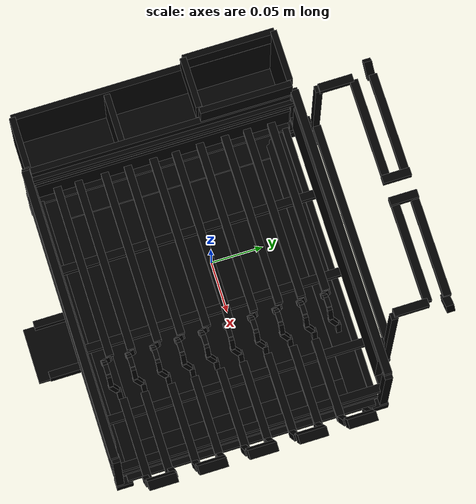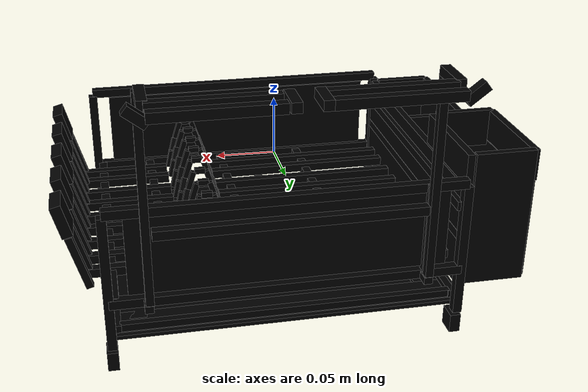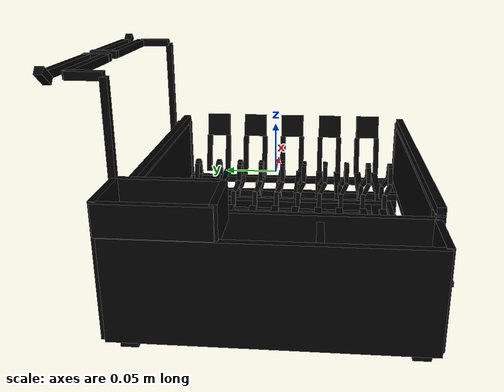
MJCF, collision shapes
<mujoco model="model">
  <option timestep="0.002" gravity="0.0 0.0 -9.81" />
  <compiler angle="radian" />
  <asset>
    <mesh file="visual/DishRack040.obj" name="DishRack040_vis" scale="0.8 0.8 0.8" />
    <texture file="visual/T_BC001.png" name="DishRack040_material" type="2d" />
    <material name="DishRack040_material" rgba="1 1 1 1.0" texture="DishRack040_material" shininess="0.4472135901451111" specular="0.3103448502657381" />
  </asset>
  <default>
    <default class="visual">
      <geom conaffinity="0" contype="0" group="2" type="mesh" density="0" />
    </default>
    <default class="collision">
      <geom group="3" rgba="1 1 1 0.25" density="0" solref="0.004 1" solimp="0.998 0.998 0.001" friction="0.5" />
    </default>
    <default class="spawn">
      <geom group="0" rgba="1 1 1 0.5" contype="0" conaffinity="0" />
      <site group="0" rgba="1 1 1 0.5" />
    </default>
    <default class="region">
      <geom group="1" conaffinity="0" contype="0" rgba="0 1 0 0" mass="0" />
    </default>
  </default>
  <worldbody>
    <body>
      <body name="object">
        <geom mesh="DishRack040_vis" type="mesh" class="visual" material="DishRack040_material" group="2" contype="0" conaffinity="0" density="0" mass="0.5" />
        <geom type="box" pos="0.01093052 -0.11919412 -0.095625568" size="0.138775861263 0.00382407195866 0.003824082762" quat="1.0 0.0 0.0 0.0" class="collision" group="3" rgba="0 0 0 0" density="0" friction="0.5" solref="0.004 1" solimp="0.998 0.998 0.001" />
        <geom type="box" pos="0.010790568 -0.009310472 -0.097610712" size="0.140227222443 0.12762362957 0.00164281092584" quat="1.0 0.0 0.0 0.0" class="collision" group="3" rgba="0 0 0 0" density="0" friction="0.5" solref="0.004 1" solimp="0.998 0.998 0.001" />
        <geom type="box" pos="0.01093052 0.103645272 -0.095625568" size="0.138775861263 0.00382407195866 0.003824082762" quat="1.0 0.0 0.0 0.0" class="collision" group="3" rgba="0 0 0 0" density="0" friction="0.5" solref="0.004 1" solimp="0.998 0.998 0.001" />
        <geom type="box" pos="-0.133622104 -0.008855744 -0.095625568" size="0.0038240775466 0.123114538193 0.00382407195866" quat="1.0 0.0 0.0 0.0" class="collision" group="3" rgba="0 0 0 0" density="0" friction="0.5" solref="0.004 1" solimp="0.998 0.998 0.001" />
        <geom type="box" pos="0.153532664 -0.008855744 -0.095625568" size="0.0038240775466 0.123114538193 0.00382407195866" quat="1.0 0.0 0.0 0.0" class="collision" group="3" rgba="0 0 0 0" density="0" friction="0.5" solref="0.004 1" solimp="0.998 0.998 0.001" />
        <geom type="box" pos="0.153404728 -0.139735184 -0.04527308" size="0.00382407456636 0.00382407456636 0.0581106483936" quat="1.0 0.0 0.0 0.0" class="collision" group="3" rgba="0 0 0 0" density="0" friction="0.5" solref="0.004 1" solimp="0.998 0.998 0.001" />
        <geom type="box" pos="-0.131488112 -0.139735184 -0.04527308" size="0.00382407456636 0.00382407456636 0.0581106543541" quat="1.0 0.0 0.0 0.0" class="collision" group="3" rgba="0 0 0 0" density="0" friction="0.5" solref="0.004 1" solimp="0.998 0.998 0.001" />
        <geom type="box" pos="0.01093052 -0.140505008 0.015257224" size="0.142520010471 0.00382407195866 0.003824082762" quat="1.0 0.0 0.0 0.0" class="collision" group="3" rgba="0 0 0 0" density="0" friction="0.5" solref="0.004 1" solimp="0.998 0.998 0.001" />
        <geom type="box" pos="0.153404728 0.122612472 -0.04527308" size="0.00382407456636 0.00382407456636 0.0581106603146" quat="1.0 0.0 0.0 0.0" class="collision" group="3" rgba="0 0 0 0" density="0" friction="0.5" solref="0.004 1" solimp="0.998 0.998 0.001" />
        <geom type="box" pos="-0.131488112 0.122612472 -0.04527308" size="0.00382407456636 0.00382407456636 0.058110666275" quat="1.0 0.0 0.0 0.0" class="collision" group="3" rgba="0 0 0 0" density="0" friction="0.5" solref="0.004 1" solimp="0.998 0.998 0.001" />
        <geom type="box" pos="0.01093052 0.122807368 0.015257224" size="0.142520010471 0.00382407195866 0.003824082762" quat="1.0 0.0 0.0 0.0" class="collision" group="3" rgba="0 0 0 0" density="0" friction="0.5" solref="0.004 1" solimp="0.998 0.998 0.001" />
        <geom type="box" pos="0.01093052 0.133778864 0.000816152" size="0.106719696522 0.00382407195866 0.00382404699922" quat="1.0 0.0 0.0 0.0" class="collision" group="3" rgba="0 0 0 0" density="0" friction="0.5" solref="0.004 1" solimp="0.998 0.998 0.001" />
        <geom type="box" pos="0.122307488 0.133680744 0.026351568" size="0.00326423831284 0.00326423831284 0.0863599896431" quat="1.0 0.0 0.0 0.0" class="collision" group="3" rgba="0 0 0 0" density="0" friction="0.5" solref="0.004 1" solimp="0.998 0.998 0.001" />
        <geom type="box" pos="-0.100098472 0.133680744 0.026351568" size="0.00326423868537 0.00326423868537 0.0863599896431" quat="1.0 0.0 0.0 0.0" class="collision" group="3" rgba="0 0 0 0" density="0" friction="0.5" solref="0.004 1" solimp="0.998 0.998 0.001" />
        <geom type="box" pos="0.122307488 0.125239088 -0.02102284" size="0.00326425395906 0.00326425395906 0.0396979540587" quat="1.0 0.0 0.0 0.0" class="collision" group="3" rgba="0 0 0 0" density="0" friction="0.5" solref="0.004 1" solimp="0.998 0.998 0.001" />
        <geom type="box" pos="-0.100098472 0.125239088 -0.02102284" size="0.00326425395906 0.00326425395906 0.0396979540587" quat="1.0 0.0 0.0 0.0" class="collision" group="3" rgba="0 0 0 0" density="0" friction="0.5" solref="0.004 1" solimp="0.998 0.998 0.001" />
        <geom type="box" pos="0.10228884 -0.008855744 -0.0627512" size="0.0038240775466 0.128261911869 0.00382405333221" quat="1.0 0.0 0.0 0.0" class="collision" group="3" rgba="0 0 0 0" density="0" friction="0.5" solref="0.004 1" solimp="0.998 0.998 0.001" />
        <geom type="box" pos="0.030340776 -0.008855744 -0.0627512" size="0.0038240775466 0.128261911869 0.00382405333221" quat="1.0 0.0 0.0 0.0" class="collision" group="3" rgba="0 0 0 0" density="0" friction="0.5" solref="0.004 1" solimp="0.998 0.998 0.001" />
        <geom type="box" pos="-0.049638032 -0.008855744 -0.0627512" size="0.0038240775466 0.128261911869 0.00382405370474" quat="1.0 0.0 0.0 0.0" class="collision" group="3" rgba="0 0 0 0" density="0" friction="0.5" solref="0.004 1" solimp="0.998 0.998 0.001" />
        <geom type="box" pos="-0.134638408 -0.008855744 -0.0627512" size="0.0038240775466 0.128261911869 0.00382405407727" quat="1.0 0.0 0.0 0.0" class="collision" group="3" rgba="0 0 0 0" density="0" friction="0.5" solref="0.004 1" solimp="0.998 0.998 0.001" />
        <geom type="box" pos="-0.132958024 -0.008855744 -0.035000696" size="0.0038240775466 0.128261911869 0.00382405407727" quat="1.0 0.0 0.0 0.0" class="collision" group="3" rgba="0 0 0 0" density="0" friction="0.5" solref="0.004 1" solimp="0.998 0.998 0.001" />
        <geom type="box" pos="-0.12887564 -0.008855744 -0.005651232" size="0.00382407791913 0.130805468559 0.00382405407727" quat="1.0 0.0 0.0 0.0" class="collision" group="3" rgba="0 0 0 0" density="0" friction="0.5" solref="0.004 1" solimp="0.998 0.998 0.001" />
        <geom type="box" pos="-0.041844192 0.099715792 -0.059487064" size="0.0861644744873 0.00382407195866 0.00382410138845" quat="1.0 0.0 0.0 0.0" class="collision" group="3" rgba="0 0 0 0" density="0" friction="0.5" solref="0.004 1" solimp="0.998 0.998 0.001" />
        <geom type="box" pos="-0.042926976 0.075619 -0.059487064" size="0.0861644744873 0.00382407195866 0.00382410101593" quat="1.0 0.0 0.0 0.0" class="collision" group="3" rgba="0 0 0 0" density="0" friction="0.5" solref="0.004 1" solimp="0.998 0.998 0.001" />
        <geom type="box" pos="-0.042926976 0.053476 -0.059487064" size="0.0861644744873 0.00382407195866 0.00382410101593" quat="1.0 0.0 0.0 0.0" class="collision" group="3" rgba="0 0 0 0" density="0" friction="0.5" solref="0.004 1" solimp="0.998 0.998 0.001" />
        <geom type="box" pos="-0.042926976 0.02838928 -0.059487064" size="0.0861644744873 0.00382407195866 0.0038241006434" quat="1.0 0.0 0.0 0.0" class="collision" group="3" rgba="0 0 0 0" density="0" friction="0.5" solref="0.004 1" solimp="0.998 0.998 0.001" />
        <geom type="box" pos="-0.042076504 0.00377148 -0.059487064" size="0.0861644744873 0.00382407195866 0.00382410027087" quat="1.0 0.0 0.0 0.0" class="collision" group="3" rgba="0 0 0 0" density="0" friction="0.5" solref="0.004 1" solimp="0.998 0.998 0.001" />
        <geom type="box" pos="-0.042076504 -0.018501776 -0.059487064" size="0.0861644744873 0.00382407195866 0.00382409989834" quat="1.0 0.0 0.0 0.0" class="collision" group="3" rgba="0 0 0 0" density="0" friction="0.5" solref="0.004 1" solimp="0.998 0.998 0.001" />
        <geom type="box" pos="-0.042076504 -0.0440574 -0.059487064" size="0.0861644744873 0.00382407195866 0.00382409952581" quat="1.0 0.0 0.0 0.0" class="collision" group="3" rgba="0 0 0 0" density="0" friction="0.5" solref="0.004 1" solimp="0.998 0.998 0.001" />
        <geom type="box" pos="-0.042076504 -0.067034016 -0.059487064" size="0.0861644744873 0.00382407195866 0.00382409915328" quat="1.0 0.0 0.0 0.0" class="collision" group="3" rgba="0 0 0 0" density="0" friction="0.5" solref="0.004 1" solimp="0.998 0.998 0.001" />
        <geom type="box" pos="-0.042076504 -0.093293008 -0.059487064" size="0.0861644744873 0.00382407195866 0.00382409878076" quat="1.0 0.0 0.0 0.0" class="collision" group="3" rgba="0 0 0 0" density="0" friction="0.5" solref="0.004 1" solimp="0.998 0.998 0.001" />
        <geom type="box" pos="-0.042076504 -0.114393984 -0.059487064" size="0.0861644744873 0.00382407195866 0.00382409878076" quat="1.0 0.0 0.0 0.0" class="collision" group="3" rgba="0 0 0 0" density="0" friction="0.5" solref="0.004 1" solimp="0.998 0.998 0.001" />
        <geom type="box" pos="0.17281864 0.099715792 -0.035891848" size="0.00301710180939 0.00301710180939 0.0235687702894" quat="0.1405487060546875 -0.0 -0.9900737404823303 -0.0" class="collision" group="3" rgba="0 0 0 0" density="0" friction="0.5" solref="0.004 1" solimp="0.998 0.998 0.001" />
        <geom type="box" pos="0.127054696 0.075619 -0.059487064" size="0.0402219057084 0.00382407195866 0.00382405631244" quat="1.0 0.0 0.0 0.0" class="collision" group="3" rgba="0 0 0 0" density="0" friction="0.5" solref="0.004 1" solimp="0.998 0.998 0.001" />
        <geom type="box" pos="0.127054696 0.053476 -0.059487064" size="0.0402219057084 0.00382407195866 0.00382405668497" quat="1.0 0.0 0.0 0.0" class="collision" group="3" rgba="0 0 0 0" density="0" friction="0.5" solref="0.004 1" solimp="0.998 0.998 0.001" />
        <geom type="box" pos="0.127054696 0.02838928 -0.059487064" size="0.0402219057084 0.00382407195866 0.0038240570575" quat="1.0 0.0 0.0 0.0" class="collision" group="3" rgba="0 0 0 0" density="0" friction="0.5" solref="0.004 1" solimp="0.998 0.998 0.001" />
        <geom type="box" pos="0.127451696 0.00377148 -0.059487064" size="0.0402219057084 0.00382407195866 0.00382405743003" quat="1.0 0.0 0.0 0.0" class="collision" group="3" rgba="0 0 0 0" density="0" friction="0.5" solref="0.004 1" solimp="0.998 0.998 0.001" />
        <geom type="box" pos="0.127451696 -0.018501776 -0.059487064" size="0.0402219057084 0.00382407195866 0.00382405780256" quat="1.0 0.0 0.0 0.0" class="collision" group="3" rgba="0 0 0 0" density="0" friction="0.5" solref="0.004 1" solimp="0.998 0.998 0.001" />
        <geom type="box" pos="0.127451696 -0.0440574 -0.059487064" size="0.0402219057084 0.00382407195866 0.00382405780256" quat="1.0 0.0 0.0 0.0" class="collision" group="3" rgba="0 0 0 0" density="0" friction="0.5" solref="0.004 1" solimp="0.998 0.998 0.001" />
        <geom type="box" pos="0.127451696 -0.067034016 -0.059487064" size="0.0402219057084 0.00382407195866 0.00382405817508" quat="1.0 0.0 0.0 0.0" class="collision" group="3" rgba="0 0 0 0" density="0" friction="0.5" solref="0.004 1" solimp="0.998 0.998 0.001" />
        <geom type="box" pos="0.127451696 -0.093293008 -0.059487064" size="0.0402219057084 0.00382407195866 0.00382405854762" quat="1.0 0.0 0.0 0.0" class="collision" group="3" rgba="0 0 0 0" density="0" friction="0.5" solref="0.004 1" solimp="0.998 0.998 0.001" />
        <geom type="box" pos="0.127451696 -0.114393984 -0.059487064" size="0.0402219057084 0.00382407195866 0.00382405892014" quat="1.0 0.0 0.0 0.0" class="collision" group="3" rgba="0 0 0 0" density="0" friction="0.5" solref="0.004 1" solimp="0.998 0.998 0.001" />
        <geom type="box" pos="0.083045248 -0.04473248 -0.049743752" size="0.0023286100477 0.00232860986143 0.00845653042197" quat="0.10435331612825394 0.0 0.994540274143219 0.0" class="collision" group="3" rgba="0 0 0 0" density="0" friction="0.5" solref="0.004 1" solimp="0.998 0.998 0.001" />
        <geom type="box" pos="0.074049576 -0.05064552 -0.022109368" size="0.00232860986143 0.00232860986143 0.00845652967692" quat="0.15572857856750488 0.0 0.987799882888794 0.0" class="collision" group="3" rgba="0 0 0 0" density="0" friction="0.5" solref="0.004 1" solimp="0.998 0.998 0.001" />
        <geom type="box" pos="0.079105704 -0.048632072 -0.036256376" size="0.00232860986143 0.00232860986143 0.0063017308712" quat="0.15189847350120544 -0.03432556986808777 0.963505208492279 0.21773000061511993" class="collision" group="3" rgba="0 0 0 0" density="0" friction="0.5" solref="0.004 1" solimp="0.998 0.998 0.001" />
        <geom type="box" pos="0.048636048 -0.04473248 -0.049743752" size="0.00232860986143 0.00232860986143 0.00845652967692" quat="0.10435343533754349 -0.0 -0.994540274143219 -0.0" class="collision" group="3" rgba="0 0 0 0" density="0" friction="0.5" solref="0.004 1" solimp="0.998 0.998 0.001" />
        <geom type="box" pos="0.057631712 -0.05064552 -0.022109368" size="0.00232860986143 0.00232860986143 0.00845653042197" quat="0.15572869777679443 -0.0 -0.987799882888794 -0.0" class="collision" group="3" rgba="0 0 0 0" density="0" friction="0.5" solref="0.004 1" solimp="0.998 0.998 0.001" />
        <geom type="box" pos="0.052575584 -0.048632072 -0.036256376" size="0.00232860986143 0.0023286100477 0.0063017308712" quat="0.151898592710495 -0.034325581043958664 -0.963505208492279 -0.21772995591163635" class="collision" group="3" rgba="0 0 0 0" density="0" friction="0.5" solref="0.004 1" solimp="0.998 0.998 0.001" />
        <geom type="box" pos="0.06576656 -0.05064552 -0.01359212" size="0.00463591590524 0.00232860986143 0.00232861060649" quat="1.0 0.0 0.0 0.0" class="collision" group="3" rgba="0 0 0 0" density="0" friction="0.5" solref="0.004 1" solimp="0.998 0.998 0.001" />
        <geom type="box" pos="0.083045248 -0.068557944 -0.049743752" size="0.0023286100477 0.00232860986143 0.00845653042197" quat="0.10435331612825394 0.0 0.994540274143219 0.0" class="collision" group="3" rgba="0 0 0 0" density="0" friction="0.5" solref="0.004 1" solimp="0.998 0.998 0.001" />
        <geom type="box" pos="0.074049576 -0.074470984 -0.022109368" size="0.00232860986143 0.00232860986143 0.00845652967692" quat="0.15572857856750488 0.0 0.987799882888794 0.0" class="collision" group="3" rgba="0 0 0 0" density="0" friction="0.5" solref="0.004 1" solimp="0.998 0.998 0.001" />
        <geom type="box" pos="0.079105704 -0.072457536 -0.036256376" size="0.00232860986143 0.00232860986143 0.0063017308712" quat="0.15189847350120544 -0.03432556986808777 0.963505208492279 0.21773000061511993" class="collision" group="3" rgba="0 0 0 0" density="0" friction="0.5" solref="0.004 1" solimp="0.998 0.998 0.001" />
        <geom type="box" pos="0.048636048 -0.068557944 -0.049743752" size="0.00232860986143 0.00232860986143 0.00845652967692" quat="0.10435343533754349 -0.0 -0.994540274143219 -0.0" class="collision" group="3" rgba="0 0 0 0" density="0" friction="0.5" solref="0.004 1" solimp="0.998 0.998 0.001" />
        <geom type="box" pos="0.057631712 -0.074470984 -0.022109368" size="0.00232860986143 0.00232860986143 0.00845653042197" quat="0.15572869777679443 -0.0 -0.987799882888794 -0.0" class="collision" group="3" rgba="0 0 0 0" density="0" friction="0.5" solref="0.004 1" solimp="0.998 0.998 0.001" />
        <geom type="box" pos="0.052575584 -0.072457536 -0.036256376" size="0.00232860986143 0.0023286100477 0.0063017308712" quat="0.151898592710495 -0.034325581043958664 -0.963505208492279 -0.21772995591163635" class="collision" group="3" rgba="0 0 0 0" density="0" friction="0.5" solref="0.004 1" solimp="0.998 0.998 0.001" />
        <geom type="box" pos="0.06576656 -0.074470984 -0.01359212" size="0.00463591590524 0.00232860986143 0.00232861060649" quat="1.0 0.0 0.0 0.0" class="collision" group="3" rgba="0 0 0 0" density="0" friction="0.5" solref="0.004 1" solimp="0.998 0.998 0.001" />
        <geom type="box" pos="0.083045248 -0.092673608 -0.049743752" size="0.0023286100477 0.00232860986143 0.00845653042197" quat="0.10435331612825394 0.0 0.994540274143219 0.0" class="collision" group="3" rgba="0 0 0 0" density="0" friction="0.5" solref="0.004 1" solimp="0.998 0.998 0.001" />
        <geom type="box" pos="0.074049576 -0.098586648 -0.022109368" size="0.00232860986143 0.00232860986143 0.00845652967692" quat="0.15572857856750488 0.0 0.987799882888794 0.0" class="collision" group="3" rgba="0 0 0 0" density="0" friction="0.5" solref="0.004 1" solimp="0.998 0.998 0.001" />
        <geom type="box" pos="0.079105704 -0.0965732 -0.036256376" size="0.00232860986143 0.00232860986143 0.0063017308712" quat="0.15189847350120544 -0.03432556986808777 0.963505208492279 0.21773000061511993" class="collision" group="3" rgba="0 0 0 0" density="0" friction="0.5" solref="0.004 1" solimp="0.998 0.998 0.001" />
        <geom type="box" pos="0.048636048 -0.092673608 -0.049743752" size="0.00232860986143 0.00232860986143 0.00845652967692" quat="0.10435343533754349 -0.0 -0.994540274143219 -0.0" class="collision" group="3" rgba="0 0 0 0" density="0" friction="0.5" solref="0.004 1" solimp="0.998 0.998 0.001" />
        <geom type="box" pos="0.057631712 -0.098586648 -0.022109368" size="0.00232860986143 0.00232860986143 0.00845653042197" quat="0.15572869777679443 -0.0 -0.987799882888794 -0.0" class="collision" group="3" rgba="0 0 0 0" density="0" friction="0.5" solref="0.004 1" solimp="0.998 0.998 0.001" />
        <geom type="box" pos="0.052575584 -0.0965732 -0.036256376" size="0.00232860986143 0.0023286100477 0.0063017308712" quat="0.151898592710495 -0.034325581043958664 -0.963505208492279 -0.21772995591163635" class="collision" group="3" rgba="0 0 0 0" density="0" friction="0.5" solref="0.004 1" solimp="0.998 0.998 0.001" />
        <geom type="box" pos="0.06576656 -0.098586648 -0.01359212" size="0.00463591590524 0.00232860986143 0.00232861060649" quat="1.0 0.0 0.0 0.0" class="collision" group="3" rgba="0 0 0 0" density="0" friction="0.5" solref="0.004 1" solimp="0.998 0.998 0.001" />
        <geom type="box" pos="0.083045248 -0.116392248 -0.049743752" size="0.0023286100477 0.00232860986143 0.00845653042197" quat="0.10435331612825394 0.0 0.994540274143219 0.0" class="collision" group="3" rgba="0 0 0 0" density="0" friction="0.5" solref="0.004 1" solimp="0.998 0.998 0.001" />
        <geom type="box" pos="0.074049576 -0.122305296 -0.022109368" size="0.00232860986143 0.00232860986143 0.00845652967692" quat="0.15572857856750488 0.0 0.987799882888794 0.0" class="collision" group="3" rgba="0 0 0 0" density="0" friction="0.5" solref="0.004 1" solimp="0.998 0.998 0.001" />
        <geom type="box" pos="0.079105704 -0.120291848 -0.036256376" size="0.00232860986143 0.00232860986143 0.0063017308712" quat="0.15189847350120544 -0.03432556986808777 0.963505208492279 0.21773000061511993" class="collision" group="3" rgba="0 0 0 0" density="0" friction="0.5" solref="0.004 1" solimp="0.998 0.998 0.001" />
        <geom type="box" pos="0.048636048 -0.116392248 -0.049743752" size="0.00232860986143 0.00232860986143 0.00845652967692" quat="0.10435343533754349 -0.0 -0.994540274143219 -0.0" class="collision" group="3" rgba="0 0 0 0" density="0" friction="0.5" solref="0.004 1" solimp="0.998 0.998 0.001" />
        <geom type="box" pos="0.057631712 -0.122305296 -0.022109368" size="0.00232860986143 0.00232860986143 0.00845653042197" quat="0.15572869777679443 -0.0 -0.987799882888794 -0.0" class="collision" group="3" rgba="0 0 0 0" density="0" friction="0.5" solref="0.004 1" solimp="0.998 0.998 0.001" />
        <geom type="box" pos="0.052575584 -0.120291848 -0.036256376" size="0.00232860986143 0.0023286100477 0.0063017308712" quat="0.151898592710495 -0.034325581043958664 -0.963505208492279 -0.21772995591163635" class="collision" group="3" rgba="0 0 0 0" density="0" friction="0.5" solref="0.004 1" solimp="0.998 0.998 0.001" />
        <geom type="box" pos="0.06576656 -0.122305296 -0.01359212" size="0.00463591590524 0.00232860986143 0.00232861060649" quat="1.0 0.0 0.0 0.0" class="collision" group="3" rgba="0 0 0 0" density="0" friction="0.5" solref="0.004 1" solimp="0.998 0.998 0.001" />
        <geom type="box" pos="0.083045248 -0.02112352 -0.049743752" size="0.0023286100477 0.00232860986143 0.00845653042197" quat="0.10435331612825394 0.0 0.994540274143219 0.0" class="collision" group="3" rgba="0 0 0 0" density="0" friction="0.5" solref="0.004 1" solimp="0.998 0.998 0.001" />
        <geom type="box" pos="0.074049576 -0.027036568 -0.022109368" size="0.00232860986143 0.00232860986143 0.00845652967692" quat="0.15572857856750488 0.0 0.987799882888794 0.0" class="collision" group="3" rgba="0 0 0 0" density="0" friction="0.5" solref="0.004 1" solimp="0.998 0.998 0.001" />
        <geom type="box" pos="0.079105704 -0.02502312 -0.036256376" size="0.00232860986143 0.00232860986143 0.0063017308712" quat="0.15189847350120544 -0.03432556986808777 0.963505208492279 0.21773000061511993" class="collision" group="3" rgba="0 0 0 0" density="0" friction="0.5" solref="0.004 1" solimp="0.998 0.998 0.001" />
        <geom type="box" pos="0.048636048 -0.02112352 -0.049743752" size="0.00232860986143 0.00232860986143 0.00845652967692" quat="0.10435343533754349 -0.0 -0.994540274143219 -0.0" class="collision" group="3" rgba="0 0 0 0" density="0" friction="0.5" solref="0.004 1" solimp="0.998 0.998 0.001" />
        <geom type="box" pos="0.057631712 -0.027036568 -0.022109368" size="0.00232860986143 0.00232860986143 0.00845653042197" quat="0.15572869777679443 -0.0 -0.987799882888794 -0.0" class="collision" group="3" rgba="0 0 0 0" density="0" friction="0.5" solref="0.004 1" solimp="0.998 0.998 0.001" />
        <geom type="box" pos="0.052575584 -0.02502312 -0.036256376" size="0.00232860986143 0.0023286100477 0.0063017308712" quat="0.151898592710495 -0.034325581043958664 -0.963505208492279 -0.21772995591163635" class="collision" group="3" rgba="0 0 0 0" density="0" friction="0.5" solref="0.004 1" solimp="0.998 0.998 0.001" />
        <geom type="box" pos="0.06576656 -0.027036568 -0.01359212" size="0.00463591590524 0.00232860986143 0.00232861060649" quat="1.0 0.0 0.0 0.0" class="collision" group="3" rgba="0 0 0 0" density="0" friction="0.5" solref="0.004 1" solimp="0.998 0.998 0.001" />
        <geom type="box" pos="0.083045248 0.002936664 -0.049743752" size="0.0023286100477 0.00232860986143 0.00845653042197" quat="0.10435331612825394 0.0 0.994540274143219 0.0" class="collision" group="3" rgba="0 0 0 0" density="0" friction="0.5" solref="0.004 1" solimp="0.998 0.998 0.001" />
        <geom type="box" pos="0.074049576 -0.002976376 -0.022109368" size="0.00232860986143 0.00232860986143 0.00845652967692" quat="0.15572857856750488 0.0 0.987799882888794 0.0" class="collision" group="3" rgba="0 0 0 0" density="0" friction="0.5" solref="0.004 1" solimp="0.998 0.998 0.001" />
        <geom type="box" pos="0.079105704 -0.000962936 -0.036256376" size="0.00232860986143 0.00232860986143 0.0063017308712" quat="0.15189847350120544 -0.03432556986808777 0.963505208492279 0.21773000061511993" class="collision" group="3" rgba="0 0 0 0" density="0" friction="0.5" solref="0.004 1" solimp="0.998 0.998 0.001" />
        <geom type="box" pos="0.048636048 0.002936664 -0.049743752" size="0.00232860986143 0.00232860986143 0.00845652967692" quat="0.10435343533754349 -0.0 -0.994540274143219 -0.0" class="collision" group="3" rgba="0 0 0 0" density="0" friction="0.5" solref="0.004 1" solimp="0.998 0.998 0.001" />
        <geom type="box" pos="0.057631712 -0.002976376 -0.022109368" size="0.00232860986143 0.00232860986143 0.00845653042197" quat="0.15572869777679443 -0.0 -0.987799882888794 -0.0" class="collision" group="3" rgba="0 0 0 0" density="0" friction="0.5" solref="0.004 1" solimp="0.998 0.998 0.001" />
        <geom type="box" pos="0.052575584 -0.000962936 -0.036256376" size="0.00232860986143 0.0023286100477 0.0063017308712" quat="0.151898592710495 -0.034325581043958664 -0.963505208492279 -0.21772995591163635" class="collision" group="3" rgba="0 0 0 0" density="0" friction="0.5" solref="0.004 1" solimp="0.998 0.998 0.001" />
        <geom type="box" pos="0.06576656 -0.002976376 -0.01359212" size="0.00463591590524 0.00232860986143 0.00232861060649" quat="1.0 0.0 0.0 0.0" class="collision" group="3" rgba="0 0 0 0" density="0" friction="0.5" solref="0.004 1" solimp="0.998 0.998 0.001" />
        <geom type="box" pos="0.083045248 0.027181184 -0.049743752" size="0.0023286100477 0.00232860986143 0.00845653042197" quat="0.10435331612825394 0.0 0.994540274143219 0.0" class="collision" group="3" rgba="0 0 0 0" density="0" friction="0.5" solref="0.004 1" solimp="0.998 0.998 0.001" />
        <geom type="box" pos="0.074049576 0.021268136 -0.022109368" size="0.00232860986143 0.00232860986143 0.00845652967692" quat="0.15572857856750488 0.0 0.987799882888794 0.0" class="collision" group="3" rgba="0 0 0 0" density="0" friction="0.5" solref="0.004 1" solimp="0.998 0.998 0.001" />
        <geom type="box" pos="0.079105704 0.023281584 -0.036256376" size="0.00232860986143 0.00232860986143 0.0063017308712" quat="0.15189847350120544 -0.03432556986808777 0.963505208492279 0.21773000061511993" class="collision" group="3" rgba="0 0 0 0" density="0" friction="0.5" solref="0.004 1" solimp="0.998 0.998 0.001" />
        <geom type="box" pos="0.048636048 0.027181184 -0.049743752" size="0.00232860986143 0.00232860986143 0.00845652967692" quat="0.10435343533754349 -0.0 -0.994540274143219 -0.0" class="collision" group="3" rgba="0 0 0 0" density="0" friction="0.5" solref="0.004 1" solimp="0.998 0.998 0.001" />
        <geom type="box" pos="0.057631712 0.021268136 -0.022109368" size="0.00232860986143 0.00232860986143 0.00845653042197" quat="0.15572869777679443 -0.0 -0.987799882888794 -0.0" class="collision" group="3" rgba="0 0 0 0" density="0" friction="0.5" solref="0.004 1" solimp="0.998 0.998 0.001" />
        <geom type="box" pos="0.052575584 0.023281584 -0.036256376" size="0.00232860986143 0.0023286100477 0.0063017308712" quat="0.151898592710495 -0.034325581043958664 -0.963505208492279 -0.21772995591163635" class="collision" group="3" rgba="0 0 0 0" density="0" friction="0.5" solref="0.004 1" solimp="0.998 0.998 0.001" />
        <geom type="box" pos="0.06576656 0.021268136 -0.01359212" size="0.00463591590524 0.00232860986143 0.00232861060649" quat="1.0 0.0 0.0 0.0" class="collision" group="3" rgba="0 0 0 0" density="0" friction="0.5" solref="0.004 1" solimp="0.998 0.998 0.001" />
        <geom type="box" pos="0.083045248 0.0513962 -0.049743752" size="0.0023286100477 0.00232860986143 0.00845653042197" quat="0.10435331612825394 0.0 0.994540274143219 0.0" class="collision" group="3" rgba="0 0 0 0" density="0" friction="0.5" solref="0.004 1" solimp="0.998 0.998 0.001" />
        <geom type="box" pos="0.074049576 0.04548316 -0.022109368" size="0.00232860986143 0.00232860986143 0.00845652967692" quat="0.15572857856750488 0.0 0.987799882888794 0.0" class="collision" group="3" rgba="0 0 0 0" density="0" friction="0.5" solref="0.004 1" solimp="0.998 0.998 0.001" />
        <geom type="box" pos="0.079105704 0.0474966 -0.036256376" size="0.00232860986143 0.00232860986143 0.0063017308712" quat="0.15189847350120544 -0.03432556986808777 0.963505208492279 0.21773000061511993" class="collision" group="3" rgba="0 0 0 0" density="0" friction="0.5" solref="0.004 1" solimp="0.998 0.998 0.001" />
        <geom type="box" pos="0.048636048 0.0513962 -0.049743752" size="0.00232860986143 0.00232860986143 0.00845652967692" quat="0.10435343533754349 -0.0 -0.994540274143219 -0.0" class="collision" group="3" rgba="0 0 0 0" density="0" friction="0.5" solref="0.004 1" solimp="0.998 0.998 0.001" />
        <geom type="box" pos="0.057631712 0.04548316 -0.022109368" size="0.00232860986143 0.00232860986143 0.00845653042197" quat="0.15572869777679443 -0.0 -0.987799882888794 -0.0" class="collision" group="3" rgba="0 0 0 0" density="0" friction="0.5" solref="0.004 1" solimp="0.998 0.998 0.001" />
        <geom type="box" pos="0.052575584 0.0474966 -0.036256376" size="0.00232860986143 0.0023286100477 0.0063017308712" quat="0.151898592710495 -0.034325581043958664 -0.963505208492279 -0.21772995591163635" class="collision" group="3" rgba="0 0 0 0" density="0" friction="0.5" solref="0.004 1" solimp="0.998 0.998 0.001" />
        <geom type="box" pos="0.06576656 0.04548316 -0.01359212" size="0.00463591590524 0.00232860986143 0.00232861060649" quat="1.0 0.0 0.0 0.0" class="collision" group="3" rgba="0 0 0 0" density="0" friction="0.5" solref="0.004 1" solimp="0.998 0.998 0.001" />
        <geom type="box" pos="0.083045248 0.075423416 -0.049743752" size="0.0023286100477 0.00232860986143 0.00845653042197" quat="0.10435331612825394 0.0 0.994540274143219 0.0" class="collision" group="3" rgba="0 0 0 0" density="0" friction="0.5" solref="0.004 1" solimp="0.998 0.998 0.001" />
        <geom type="box" pos="0.074049576 0.069510368 -0.022109368" size="0.00232860986143 0.00232860986143 0.00845652967692" quat="0.15572857856750488 0.0 0.987799882888794 0.0" class="collision" group="3" rgba="0 0 0 0" density="0" friction="0.5" solref="0.004 1" solimp="0.998 0.998 0.001" />
        <geom type="box" pos="0.079105704 0.071523816 -0.036256376" size="0.00232860986143 0.00232860986143 0.0063017308712" quat="0.15189847350120544 -0.03432556986808777 0.963505208492279 0.21773000061511993" class="collision" group="3" rgba="0 0 0 0" density="0" friction="0.5" solref="0.004 1" solimp="0.998 0.998 0.001" />
        <geom type="box" pos="0.048636048 0.075423416 -0.049743752" size="0.00232860986143 0.00232860986143 0.00845652967692" quat="0.10435343533754349 -0.0 -0.994540274143219 -0.0" class="collision" group="3" rgba="0 0 0 0" density="0" friction="0.5" solref="0.004 1" solimp="0.998 0.998 0.001" />
        <geom type="box" pos="0.057631712 0.069510368 -0.022109368" size="0.00232860986143 0.00232860986143 0.00845653042197" quat="0.15572869777679443 -0.0 -0.987799882888794 -0.0" class="collision" group="3" rgba="0 0 0 0" density="0" friction="0.5" solref="0.004 1" solimp="0.998 0.998 0.001" />
        <geom type="box" pos="0.052575584 0.071523816 -0.036256376" size="0.00232860986143 0.0023286100477 0.0063017308712" quat="0.151898592710495 -0.034325581043958664 -0.963505208492279 -0.21772995591163635" class="collision" group="3" rgba="0 0 0 0" density="0" friction="0.5" solref="0.004 1" solimp="0.998 0.998 0.001" />
        <geom type="box" pos="0.06576656 0.069510368 -0.01359212" size="0.00463591590524 0.00232860986143 0.00232861060649" quat="1.0 0.0 0.0 0.0" class="collision" group="3" rgba="0 0 0 0" density="0" friction="0.5" solref="0.004 1" solimp="0.998 0.998 0.001" />
        <geom type="box" pos="0.083045248 0.099115528 -0.049743752" size="0.0023286100477 0.00232860986143 0.00845653042197" quat="0.10435331612825394 0.0 0.994540274143219 0.0" class="collision" group="3" rgba="0 0 0 0" density="0" friction="0.5" solref="0.004 1" solimp="0.998 0.998 0.001" />
        <geom type="box" pos="0.074049576 0.09320248 -0.022109368" size="0.00232860986143 0.00232860986143 0.00845652967692" quat="0.15572857856750488 0.0 0.987799882888794 0.0" class="collision" group="3" rgba="0 0 0 0" density="0" friction="0.5" solref="0.004 1" solimp="0.998 0.998 0.001" />
        <geom type="box" pos="0.079105704 0.095215928 -0.036256376" size="0.00232860986143 0.00232860986143 0.0063017308712" quat="0.15189847350120544 -0.03432556986808777 0.963505208492279 0.21773000061511993" class="collision" group="3" rgba="0 0 0 0" density="0" friction="0.5" solref="0.004 1" solimp="0.998 0.998 0.001" />
        <geom type="box" pos="0.048636048 0.099115528 -0.049743752" size="0.00232860986143 0.00232860986143 0.00845652967692" quat="0.10435343533754349 -0.0 -0.994540274143219 -0.0" class="collision" group="3" rgba="0 0 0 0" density="0" friction="0.5" solref="0.004 1" solimp="0.998 0.998 0.001" />
        <geom type="box" pos="0.057631712 0.09320248 -0.022109368" size="0.00232860986143 0.00232860986143 0.00845653042197" quat="0.15572869777679443 -0.0 -0.987799882888794 -0.0" class="collision" group="3" rgba="0 0 0 0" density="0" friction="0.5" solref="0.004 1" solimp="0.998 0.998 0.001" />
        <geom type="box" pos="0.052575584 0.095215928 -0.036256376" size="0.00232860986143 0.0023286100477 0.0063017308712" quat="0.151898592710495 -0.034325581043958664 -0.963505208492279 -0.21772995591163635" class="collision" group="3" rgba="0 0 0 0" density="0" friction="0.5" solref="0.004 1" solimp="0.998 0.998 0.001" />
        <geom type="box" pos="0.06576656 0.09320248 -0.01359212" size="0.00463591590524 0.00232860986143 0.00232861060649" quat="1.0 0.0 0.0 0.0" class="collision" group="3" rgba="0 0 0 0" density="0" friction="0.5" solref="0.004 1" solimp="0.998 0.998 0.001" />
        <geom type="box" pos="0.17281864 0.075313432 -0.035891848" size="0.00301710180939 0.00301710180939 0.0235687702894" quat="0.1405487060546875 -0.0 -0.9900737404823303 -0.0" class="collision" group="3" rgba="0 0 0 0" density="0" friction="0.5" solref="0.004 1" solimp="0.998 0.998 0.001" />
        <geom type="box" pos="0.17281864 0.051879032 -0.035891848" size="0.00301710180939 0.00301710180939 0.0235687702894" quat="0.1405487060546875 -0.0 -0.9900737404823303 -0.0" class="collision" group="3" rgba="0 0 0 0" density="0" friction="0.5" solref="0.004 1" solimp="0.998 0.998 0.001" />
        <geom type="box" pos="0.17281864 0.027165328 -0.035891848" size="0.00301710180939 0.00301710180939 0.0235687702894" quat="0.1405487060546875 -0.0 -0.9900737404823303 -0.0" class="collision" group="3" rgba="0 0 0 0" density="0" friction="0.5" solref="0.004 1" solimp="0.998 0.998 0.001" />
        <geom type="box" pos="0.17281864 0.003624272 -0.035891848" size="0.00301710180939 0.00301710180939 0.0235687702894" quat="0.1405487060546875 -0.0 -0.9900737404823303 -0.0" class="collision" group="3" rgba="0 0 0 0" density="0" friction="0.5" solref="0.004 1" solimp="0.998 0.998 0.001" />
        <geom type="box" pos="0.17281864 -0.020257256 -0.035891848" size="0.00301710180939 0.00301710180939 0.0235687702894" quat="0.1405487060546875 -0.0 -0.9900737404823303 -0.0" class="collision" group="3" rgba="0 0 0 0" density="0" friction="0.5" solref="0.004 1" solimp="0.998 0.998 0.001" />
        <geom type="box" pos="0.17281864 -0.044296344 -0.035891848" size="0.00301710180939 0.00301710180939 0.0235687702894" quat="0.1405487060546875 -0.0 -0.9900737404823303 -0.0" class="collision" group="3" rgba="0 0 0 0" density="0" friction="0.5" solref="0.004 1" solimp="0.998 0.998 0.001" />
        <geom type="box" pos="0.17281864 -0.068230432 -0.035891848" size="0.00301710180939 0.00301710180939 0.0235687702894" quat="0.1405487060546875 -0.0 -0.9900737404823303 -0.0" class="collision" group="3" rgba="0 0 0 0" density="0" friction="0.5" solref="0.004 1" solimp="0.998 0.998 0.001" />
        <geom type="box" pos="0.17281864 -0.091743568 -0.035891848" size="0.00301710180939 0.00301710180939 0.0235687702894" quat="0.1405487060546875 -0.0 -0.9900737404823303 -0.0" class="collision" group="3" rgba="0 0 0 0" density="0" friction="0.5" solref="0.004 1" solimp="0.998 0.998 0.001" />
        <geom type="box" pos="0.17281864 -0.116416912 -0.035891848" size="0.00301710180939 0.00301710180939 0.0235687702894" quat="0.1405487060546875 -0.0 -0.9900737404823303 -0.0" class="collision" group="3" rgba="0 0 0 0" density="0" friction="0.5" solref="0.004 1" solimp="0.998 0.998 0.001" />
        <geom type="box" pos="0.149204928 -0.008855744 -0.061647352" size="0.00382407791913 0.131997573376 0.00382407195866" quat="1.0 0.0 0.0 0.0" class="collision" group="3" rgba="0 0 0 0" density="0" friction="0.5" solref="0.004 1" solimp="0.998 0.998 0.001" />
        <geom type="box" pos="-0.050614 0.166407224 0.112974768" size="0.0465985149145 0.00382407195866 0.00382407531142" quat="1.0 0.0 0.0 0.0" class="collision" group="3" rgba="0 0 0 0" density="0" friction="0.5" solref="0.004 1" solimp="0.998 0.998 0.001" />
        <geom type="box" pos="0.072865808 0.166407224 0.112974768" size="0.0465985149145 0.00382407195866 0.00382407531142" quat="1.0 0.0 0.0 0.0" class="collision" group="3" rgba="0 0 0 0" density="0" friction="0.5" solref="0.004 1" solimp="0.998 0.998 0.001" />
        <geom type="box" pos="-0.099458864 0.150190728 0.113308416" size="0.00382407270372 0.0163512319326 0.00382407195866" quat="1.0 0.0 0.0 0.0" class="collision" group="3" rgba="0 0 0 0" density="0" friction="0.5" solref="0.004 1" solimp="0.998 0.998 0.001" />
        <geom type="box" pos="0.120147624 0.150190728 0.113308416" size="0.00382407270372 0.0163512319326 0.00382407195866" quat="1.0 0.0 0.0 0.0" class="collision" group="3" rgba="0 0 0 0" density="0" friction="0.5" solref="0.004 1" solimp="0.998 0.998 0.001" />
        <geom type="box" pos="-0.050614 0.184772888 0.112974768" size="0.0465985149145 0.00382407195866 0.00382407531142" quat="1.0 0.0 0.0 0.0" class="collision" group="3" rgba="0 0 0 0" density="0" friction="0.5" solref="0.004 1" solimp="0.998 0.998 0.001" />
        <geom type="box" pos="0.072865808 0.184772888 0.112974768" size="0.0465985149145 0.00382407195866 0.00382407531142" quat="1.0 0.0 0.0 0.0" class="collision" group="3" rgba="0 0 0 0" density="0" friction="0.5" solref="0.004 1" solimp="0.998 0.998 0.001" />
        <geom type="box" pos="-0.103542632 0.183302192 0.113308416" size="0.00382407195866 0.00382407195866 0.00920113697644" quat="0.3102211058139801 0.6354233026504517 0.6354234218597412 0.3102211058139801" class="collision" group="3" rgba="0 0 0 0" density="0" friction="0.5" solref="0.004 1" solimp="0.998 0.998 0.001" />
        <geom type="box" pos="0.125256376 0.183302192 0.113308416" size="0.00382407195866 0.00382407195866 0.00920113697644" quat="0.31022119522094727 -0.6354233026504517 -0.6354234218597412 0.31022101640701294" class="collision" group="3" rgba="0 0 0 0" density="0" friction="0.5" solref="0.004 1" solimp="0.998 0.998 0.001" />
        <geom type="box" pos="0.02139504 0.175695064 0.113308416" size="0.00382407233119 0.0134508907795 0.00382407195866" quat="1.0 0.0 0.0 0.0" class="collision" group="3" rgba="0 0 0 0" density="0" friction="0.5" solref="0.004 1" solimp="0.998 0.998 0.001" />
        <geom type="box" pos="-4.996e-05 0.175695064 0.113308416" size="0.00382407233119 0.0134508907795 0.00382407195866" quat="1.0 0.0 0.0 0.0" class="collision" group="3" rgba="0 0 0 0" density="0" friction="0.5" solref="0.004 1" solimp="0.998 0.998 0.001" />
        <geom type="box" pos="0.010790568 -0.009310472 -0.100869736" size="0.110244047642 0.100335896015 0.00164280757308" quat="1.0 0.0 0.0 0.0" class="collision" group="3" rgba="0 0 0 0" density="0" friction="0.5" solref="0.004 1" solimp="0.998 0.998 0.001" />
        <geom type="box" pos="0.010790568 -0.122705256 -0.092854584" size="0.140227210522 0.0119529217482 0.0016428174451" quat="1.0 0.0 0.0 0.0" class="collision" group="3" rgba="0 0 0 0" density="0" friction="0.5" solref="0.004 1" solimp="0.998 0.998 0.001" />
        <geom type="box" pos="0.010790568 0.103779008 -0.092854584" size="0.140227210522 0.0119529217482 0.00164281725884" quat="1.0 0.0 0.0 0.0" class="collision" group="3" rgba="0 0 0 0" density="0" friction="0.5" solref="0.004 1" solimp="0.998 0.998 0.001" />
        <geom type="box" pos="0.135931104 -0.004325248 -0.092854584" size="0.0119529873132 0.106596136093 0.00164281707257" quat="1.0 0.0 0.0 0.0" class="collision" group="3" rgba="0 0 0 0" density="0" friction="0.5" solref="0.004 1" solimp="0.998 0.998 0.001" />
        <geom type="box" pos="-0.116390448 -0.004325248 -0.092854584" size="0.0119529858231 0.106596124172 0.0016428168863" quat="1.0 0.0 0.0 0.0" class="collision" group="3" rgba="0 0 0 0" density="0" friction="0.5" solref="0.004 1" solimp="0.998 0.998 0.001" />
        <geom type="box" pos="0.1483166 -0.008855744 -0.089699744" size="0.00310627650469 0.127025365829 0.00310627240688" quat="1.0 0.0 0.0 0.0" class="collision" group="3" rgba="0 0 0 0" density="0" friction="0.5" solref="0.004 1" solimp="0.998 0.998 0.001" />
        <geom type="box" pos="-0.128691528 -0.008855744 -0.089699744" size="0.00310627669096 0.12702537775 0.00310627259314" quat="1.0 0.0 0.0 0.0" class="collision" group="3" rgba="0 0 0 0" density="0" friction="0.5" solref="0.004 1" solimp="0.998 0.998 0.001" />
        <geom type="box" pos="0.009544536 -0.132781288 -0.089699744" size="0.136805617809 0.00310633219779 0.00310628246516" quat="1.0 0.0 0.0 0.0" class="collision" group="3" rgba="0 0 0 0" density="0" friction="0.5" solref="0.004 1" solimp="0.998 0.998 0.001" />
        <geom type="box" pos="0.009544536 0.114071664 -0.089699744" size="0.136805617809 0.00310633219779 0.00310628265142" quat="1.0 0.0 0.0 0.0" class="collision" group="3" rgba="0 0 0 0" density="0" friction="0.5" solref="0.004 1" solimp="0.998 0.998 0.001" />
        <geom type="box" pos="0.092310008 0.017423936 -0.106299176" size="0.0310985326767 0.00446281433106 0.00403840355575" quat="1.0 0.0 0.0 0.0" class="collision" group="3" rgba="0 0 0 0" density="0" friction="0.5" solref="0.004 1" solimp="0.998 0.998 0.001" />
        <geom type="box" pos="0.092310008 -0.036098088 -0.106299176" size="0.0310985326767 0.00446281433106 0.00403840355575" quat="1.0 0.0 0.0 0.0" class="collision" group="3" rgba="0 0 0 0" density="0" friction="0.5" solref="0.004 1" solimp="0.998 0.998 0.001" />
        <geom type="box" pos="0.010790568 -0.083341128 -0.11237432" size="0.0271887272596 0.101530432701 0.00264064632356" quat="1.0 0.0 0.0 0.0" class="collision" group="3" rgba="0 0 0 0" density="0" friction="0.5" solref="0.004 1" solimp="0.998 0.998 0.001" />
        <geom type="box" pos="0.010790568 -0.008189728 -0.103804416" size="0.0373627394438 0.0308208286763 0.0035294111818" quat="1.0 0.0 0.0 0.0" class="collision" group="3" rgba="0 0 0 0" density="0" friction="0.5" solref="0.004 1" solimp="0.998 0.998 0.001" />
        <geom type="box" pos="-0.015767608 -0.083341128 -0.106310024" size="0.00354179441929 0.0903609097004 0.00681999996305" quat="1.0 0.0 0.0 0.0" class="collision" group="3" rgba="0 0 0 0" density="0" friction="0.5" solref="0.004 1" solimp="0.998 0.998 0.001" />
        <geom type="box" pos="0.035779352 -0.083341128 -0.106310024" size="0.00354179441929 0.0903608977796 0.00681999921799" quat="1.0 0.0 0.0 0.0" class="collision" group="3" rgba="0 0 0 0" density="0" friction="0.5" solref="0.004 1" solimp="0.998 0.998 0.001" />
        <geom type="box" pos="0.01093052 -0.140505008 -0.061216712" size="0.142520010471 0.00382407195866 0.003824082762" quat="1.0 0.0 0.0 0.0" class="collision" group="3" rgba="0 0 0 0" density="0" friction="0.5" solref="0.004 1" solimp="0.998 0.998 0.001" />
        <geom type="box" pos="0.01093052 0.122807368 -0.061936384" size="0.142520010471 0.00382407195866 0.003824082762" quat="1.0 0.0 0.0 0.0" class="collision" group="3" rgba="0 0 0 0" density="0" friction="0.5" solref="0.004 1" solimp="0.998 0.998 0.001" />
        <geom type="box" pos="0.153722808 0.119464768 -0.113361048" size="0.00448399335146 0.00815339535475 0.00815339535475" quat="1.0 0.0 0.0 0.0" class="collision" group="3" rgba="0 0 0 0" density="0" friction="0.5" solref="0.004 1" solimp="0.998 0.998 0.001" />
        <geom type="box" pos="0.153722808 -0.135540608 -0.113361048" size="0.00448399335146 0.00815339535475 0.00815339535475" quat="1.0 0.0 0.0 0.0" class="collision" group="3" rgba="0 0 0 0" density="0" friction="0.5" solref="0.004 1" solimp="0.998 0.998 0.001" />
        <geom type="box" pos="-0.130133136 0.119464768 -0.113361048" size="0.00448399335146 0.00815339535475 0.00815339535475" quat="1.0 0.0 0.0 0.0" class="collision" group="3" rgba="0 0 0 0" density="0" friction="0.5" solref="0.004 1" solimp="0.998 0.998 0.001" />
        <geom type="box" pos="-0.130133136 -0.135540608 -0.113361048" size="0.00448399335146 0.00815339535475 0.00815339535475" quat="1.0 0.0 0.0 0.0" class="collision" group="3" rgba="0 0 0 0" density="0" friction="0.5" solref="0.004 1" solimp="0.998 0.998 0.001" />
        <geom type="box" pos="0.183134456 -0.104347488 0.00015348" size="0.00448399335146 0.0138840794564 0.0138840794564" quat="0.9910476207733154 -1.2251812774353261e-15 0.13350863754749298 1.7938074137191506e-08" class="collision" group="3" rgba="0 0 0 0" density="0" friction="0.5" solref="0.004 1" solimp="0.998 0.998 0.001" />
        <geom type="box" pos="0.183134456 -0.056316712 0.00015348" size="0.00448399335146 0.0138840794564 0.0138840794564" quat="0.9910476207733154 -1.2251812774353261e-15 0.13350863754749298 1.7938074137191506e-08" class="collision" group="3" rgba="0 0 0 0" density="0" friction="0.5" solref="0.004 1" solimp="0.998 0.998 0.001" />
        <geom type="box" pos="0.183134456 -0.008123112 0.00015348" size="0.00448399335146 0.0138840794564 0.0138840794564" quat="0.9910476207733154 -1.2251812774353261e-15 0.13350863754749298 1.7938074137191506e-08" class="collision" group="3" rgba="0 0 0 0" density="0" friction="0.5" solref="0.004 1" solimp="0.998 0.998 0.001" />
        <geom type="box" pos="0.183134456 0.039907656 0.00015348" size="0.00448399335146 0.0138840794564 0.0138840794564" quat="0.9910476207733154 -1.2251812774353261e-15 0.13350863754749298 1.7938074137191506e-08" class="collision" group="3" rgba="0 0 0 0" density="0" friction="0.5" solref="0.004 1" solimp="0.998 0.998 0.001" />
        <geom type="box" pos="0.183134456 0.0876128 0.00015348" size="0.00448399335146 0.0138840794564 0.0138840794564" quat="0.9910476207733154 -1.2251812774353261e-15 0.13350863754749298 1.7938074137191506e-08" class="collision" group="3" rgba="0 0 0 0" density="0" friction="0.5" solref="0.004 1" solimp="0.998 0.998 0.001" />
        <geom type="box" pos="0.010427272 -0.139295288 -0.021903344" size="0.127583181858 0.0038830358535 0.0330324351788" quat="1.0 0.0 0.0 0.0" class="collision" group="3" rgba="0 0 0 0" density="0" friction="0.5" solref="0.004 1" solimp="0.998 0.998 0.001" />
        <geom type="box" pos="0.010427272 0.12124372 -0.021903344" size="0.127583086491 0.00353226959706 0.0330324113369" quat="1.0 0.0 0.0 0.0" class="collision" group="3" rgba="0 0 0 0" density="0" friction="0.5" solref="0.004 1" solimp="0.998 0.998 0.001" />
        <geom type="box" pos="-0.162092072 -0.137528888 -0.032256712" size="0.0251630544662 0.00302521102131 0.0431358128786" quat="1.0 0.0 0.0 0.0" class="collision" group="3" rgba="0 0 0 0" density="0" friction="0.5" solref="0.004 1" solimp="0.998 0.998 0.001" />
        <geom type="box" pos="-0.162092072 0.119516784 -0.019744136" size="0.0251630544662 0.00302521102131 0.057961755991" quat="1.0 0.0 0.0 0.0" class="collision" group="3" rgba="0 0 0 0" density="0" friction="0.5" solref="0.004 1" solimp="0.998 0.998 0.001" />
        <geom type="box" pos="-0.162092072 -0.010087408 -0.073532144" size="0.0276796847582 0.12852268219 0.00302522964776" quat="1.0 0.0 0.0 0.0" class="collision" group="3" rgba="0 0 0 0" density="0" friction="0.5" solref="0.004 1" solimp="0.998 0.998 0.001" />
        <geom type="box" pos="-0.187328992 -0.010087408 -0.033658792" size="0.003025219962 0.128522586822 0.0440800279379" quat="1.0 0.0 0.0 0.0" class="collision" group="3" rgba="0 0 0 0" density="0" friction="0.5" solref="0.004 1" solimp="0.998 0.998 0.001" />
        <geom type="box" pos="-0.187328992 0.075393056 0.024202208" size="0.00302521251142 0.0449767142534 0.0133217453956" quat="1.0 0.0 0.0 0.0" class="collision" group="3" rgba="0 0 0 0" density="0" friction="0.5" solref="0.004 1" solimp="0.998 0.998 0.001" />
        <geom type="box" pos="-0.133506304 0.075393056 0.024202208" size="0.00302521269769 0.0449767202139 0.0133217468858" quat="1.0 0.0 0.0 0.0" class="collision" group="3" rgba="0 0 0 0" density="0" friction="0.5" solref="0.004 1" solimp="0.998 0.998 0.001" />
        <geom type="box" pos="-0.132318816 -0.010087408 -0.033658792" size="0.003025219962 0.128522622585 0.0440800279379" quat="1.0 0.0 0.0 0.0" class="collision" group="3" rgba="0 0 0 0" density="0" friction="0.5" solref="0.004 1" solimp="0.998 0.998 0.001" />
        <geom type="box" pos="-0.162092072 0.030798712 0.02230464" size="0.0251630544662 0.00302521102131 0.0162558585405" quat="1.0 0.0 0.0 0.0" class="collision" group="3" rgba="0 0 0 0" density="0" friction="0.5" solref="0.004 1" solimp="0.998 0.998 0.001" />
        <geom type="box" pos="-0.159035736 -0.045778408 -0.034524048" size="0.0251630485058 0.00302520990372 0.0395351052284" quat="1.0 0.0 0.0 0.0" class="collision" group="3" rgba="0 0 0 0" density="0" friction="0.5" solref="0.004 1" solimp="0.998 0.998 0.001" />
        <geom type="box" pos="0.123060912 0.129241816 -0.062376696" size="0.003515400365 0.00815339535475 0.00304871723056" quat="1.0 0.0 0.0 0.0" class="collision" group="3" rgba="0 0 0 0" density="0" friction="0.5" solref="0.004 1" solimp="0.998 0.998 0.001" />
        <geom type="box" pos="-0.099478896 0.129241816 -0.062376696" size="0.00351539999246 0.00815339535475 0.00304871723056" quat="1.0 0.0 0.0 0.0" class="collision" group="3" rgba="0 0 0 0" density="0" friction="0.5" solref="0.004 1" solimp="0.998 0.998 0.001" />
        <geom class="region" name="reg_int_0" type="box" pos="-0.039785436 -0.008223436 0.024973096" size="0.084941468 0.125511252 0.0808826" />
        <geom class="region" name="reg_int_1" type="box" pos="0.125662144 -0.008223436 0.024973144" size="0.038832552 0.125511252 0.080882648" />
        <geom size="0.190346832 0.186721176 0.123272232" pos="-0 0 0" name="reg_bbox" class="region" type="box" quat="1.0 0.0 0.0 0.0" />
      </body>
    </body>
  </worldbody>
  <actuator />
</mujoco>
